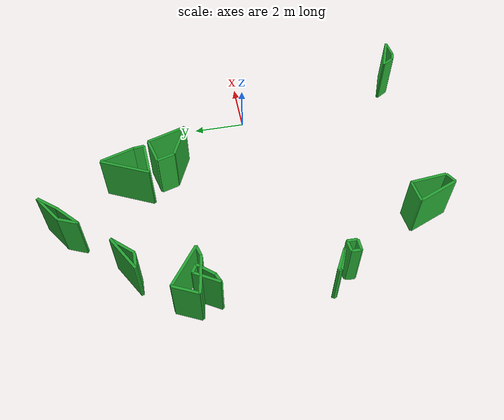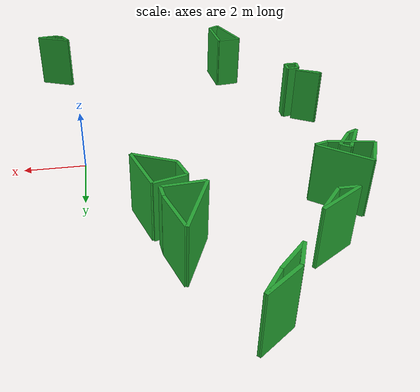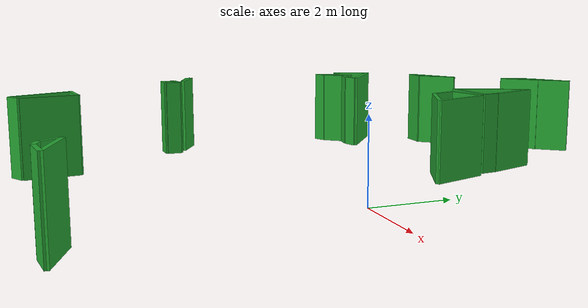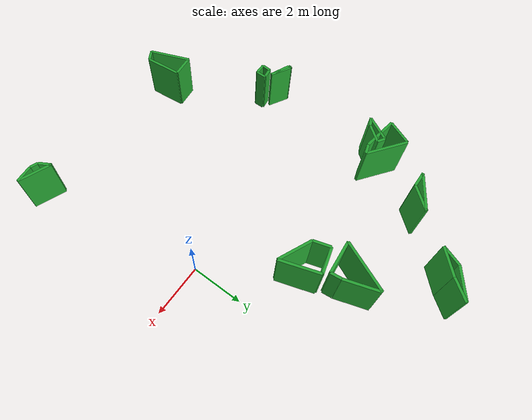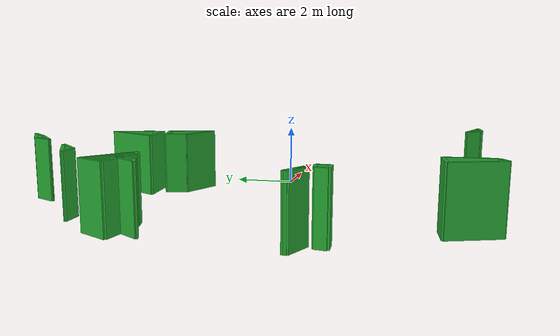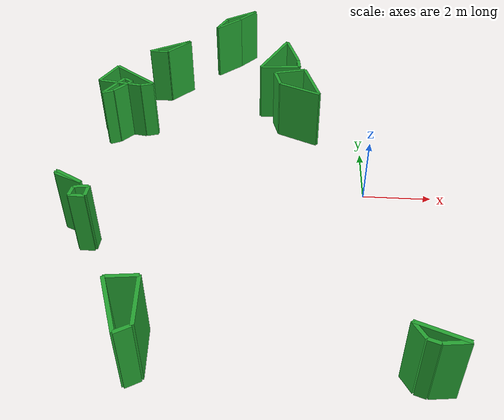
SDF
<?xml version='1.0'?>
<sdf version='1.6'>
  <model name='walls'>
    <pose frame=''>0 0 0 0 -0 0</pose>
    <static>1</static>
    <link name='obstcle_1'>
      <collision name='edge_1_Collision'>
        <geometry>
          <box>
            <size>0.60 0.1 2</size>
          </box>
        </geometry>
        <pose frame=''>-6.91 4.86 1 0 -0 0.00</pose>
      </collision>
      <visual name='edge_1_Visual'>
        <pose frame=''>-6.91 4.86 1 0 -0 0.00</pose>
        <geometry>
          <box>
            <size>0.60 0.1 2</size>
          </box>
        </geometry>
        <material>
          <script>
            <uri>file://media/materials/scripts/gazebo.material</uri>
            <name>Gazebo/Green</name>
          </script>
          <ambient>1 1 1 1</ambient>
        </material>
        <meta>
          <layer>0</layer>
        </meta>
      </visual>
      <collision name='edge_2_Collision'>
        <geometry>
          <box>
            <size>1.02 0.1 2</size>
          </box>
        </geometry>
        <pose frame=''>-6.27 5.24 1 0 -0 0.84</pose>
      </collision>
      <visual name='edge_2_Visual'>
        <pose frame=''>-6.27 5.24 1 0 -0 0.84</pose>
        <geometry>
          <box>
            <size>1.02 0.1 2</size>
          </box>
        </geometry>
        <material>
          <script>
            <uri>file://media/materials/scripts/gazebo.material</uri>
            <name>Gazebo/Green</name>
          </script>
          <ambient>1 1 1 1</ambient>
        </material>
        <meta>
          <layer>0</layer>
        </meta>
      </visual>
      <collision name='edge_3_Collision'>
        <geometry>
          <box>
            <size>1.49 0.1 2</size>
          </box>
        </geometry>
        <pose frame=''>-6.57 5.24 1 0 -0 0.54</pose>
      </collision>
      <visual name='edge_3_Visual'>
        <pose frame=''>-6.57 5.24 1 0 -0 0.54</pose>
        <geometry>
          <box>
            <size>1.49 0.1 2</size>
          </box>
        </geometry>
        <material>
          <script>
            <uri>file://media/materials/scripts/gazebo.material</uri>
            <name>Gazebo/Green</name>
          </script>
          <ambient>1 1 1 1</ambient>
        </material>
        <meta>
          <layer>0</layer>
        </meta>
      </visual>
    </link>
    <link name='obstcle_2'>
      <collision name='edge_4_Collision'>
        <geometry>
          <box>
            <size>0.42 0.1 2</size>
          </box>
        </geometry>
        <pose frame=''>-5.60 -6.72 1 0 -0 0.52</pose>
      </collision>
      <visual name='edge_4_Visual'>
        <pose frame=''>-5.60 -6.72 1 0 -0 0.52</pose>
        <geometry>
          <box>
            <size>0.42 0.1 2</size>
          </box>
        </geometry>
        <material>
          <script>
            <uri>file://media/materials/scripts/gazebo.material</uri>
            <name>Gazebo/Green</name>
          </script>
          <ambient>1 1 1 1</ambient>
        </material>
        <meta>
          <layer>0</layer>
        </meta>
      </visual>
      <collision name='edge_5_Collision'>
        <geometry>
          <box>
            <size>1.39 0.1 2</size>
          </box>
        </geometry>
        <pose frame=''>-5.47 -5.92 1 0 -0 -1.48</pose>
      </collision>
      <visual name='edge_5_Visual'>
        <pose frame=''>-5.47 -5.92 1 0 -0 -1.48</pose>
        <geometry>
          <box>
            <size>1.39 0.1 2</size>
          </box>
        </geometry>
        <material>
          <script>
            <uri>file://media/materials/scripts/gazebo.material</uri>
            <name>Gazebo/Green</name>
          </script>
          <ambient>1 1 1 1</ambient>
        </material>
        <meta>
          <layer>0</layer>
        </meta>
      </visual>
      <collision name='edge_6_Collision'>
        <geometry>
          <box>
            <size>0.84 0.1 2</size>
          </box>
        </geometry>
        <pose frame=''>-5.95 -5.28 1 0 -0 0.11</pose>
      </collision>
      <visual name='edge_6_Visual'>
        <pose frame=''>-5.95 -5.28 1 0 -0 0.11</pose>
        <geometry>
          <box>
            <size>0.84 0.1 2</size>
          </box>
        </geometry>
        <material>
          <script>
            <uri>file://media/materials/scripts/gazebo.material</uri>
            <name>Gazebo/Green</name>
          </script>
          <ambient>1 1 1 1</ambient>
        </material>
        <meta>
          <layer>0</layer>
        </meta>
      </visual>
      <collision name='edge_7_Collision'>
        <geometry>
          <box>
            <size>1.61 0.1 2</size>
          </box>
        </geometry>
        <pose frame=''>-6.07 -6.07 1 0 -0 -1.20</pose>
      </collision>
      <visual name='edge_7_Visual'>
        <pose frame=''>-6.07 -6.07 1 0 -0 -1.20</pose>
        <geometry>
          <box>
            <size>1.61 0.1 2</size>
          </box>
        </geometry>
        <material>
          <script>
            <uri>file://media/materials/scripts/gazebo.material</uri>
            <name>Gazebo/Green</name>
          </script>
          <ambient>1 1 1 1</ambient>
        </material>
        <meta>
          <layer>0</layer>
        </meta>
      </visual>
    </link>
    <link name='obstcle_3'>
      <collision name='edge_8_Collision'>
        <geometry>
          <box>
            <size>0.40 0.1 2</size>
          </box>
        </geometry>
        <pose frame=''>-6.93 2.73 1 0 -0 0.28</pose>
      </collision>
      <visual name='edge_8_Visual'>
        <pose frame=''>-6.93 2.73 1 0 -0 0.28</pose>
        <geometry>
          <box>
            <size>0.40 0.1 2</size>
          </box>
        </geometry>
        <material>
          <script>
            <uri>file://media/materials/scripts/gazebo.material</uri>
            <name>Gazebo/Green</name>
          </script>
          <ambient>1 1 1 1</ambient>
        </material>
        <meta>
          <layer>0</layer>
        </meta>
      </visual>
      <collision name='edge_9_Collision'>
        <geometry>
          <box>
            <size>1.68 0.1 2</size>
          </box>
        </geometry>
        <pose frame=''>-7.41 3.29 1 0 -0 -0.64</pose>
      </collision>
      <visual name='edge_9_Visual'>
        <pose frame=''>-7.41 3.29 1 0 -0 -0.64</pose>
        <geometry>
          <box>
            <size>1.68 0.1 2</size>
          </box>
        </geometry>
        <material>
          <script>
            <uri>file://media/materials/scripts/gazebo.material</uri>
            <name>Gazebo/Green</name>
          </script>
          <ambient>1 1 1 1</ambient>
        </material>
        <meta>
          <layer>0</layer>
        </meta>
      </visual>
      <collision name='edge_10_Collision'>
        <geometry>
          <box>
            <size>0.99 0.1 2</size>
          </box>
        </geometry>
        <pose frame=''>-8.29 3.34 1 0 -0 1.13</pose>
      </collision>
      <visual name='edge_10_Visual'>
        <pose frame=''>-8.29 3.34 1 0 -0 1.13</pose>
        <geometry>
          <box>
            <size>0.99 0.1 2</size>
          </box>
        </geometry>
        <material>
          <script>
            <uri>file://media/materials/scripts/gazebo.material</uri>
            <name>Gazebo/Green</name>
          </script>
          <ambient>1 1 1 1</ambient>
        </material>
        <meta>
          <layer>0</layer>
        </meta>
      </visual>
      <collision name='edge_11_Collision'>
        <geometry>
          <box>
            <size>1.40 0.1 2</size>
          </box>
        </geometry>
        <pose frame=''>-7.81 2.78 1 0 -0 -0.16</pose>
      </collision>
      <visual name='edge_11_Visual'>
        <pose frame=''>-7.81 2.78 1 0 -0 -0.16</pose>
        <geometry>
          <box>
            <size>1.40 0.1 2</size>
          </box>
        </geometry>
        <material>
          <script>
            <uri>file://media/materials/scripts/gazebo.material</uri>
            <name>Gazebo/Green</name>
          </script>
          <ambient>1 1 1 1</ambient>
        </material>
        <meta>
          <layer>0</layer>
        </meta>
      </visual>
    </link>
    <link name='obstcle_4'>
      <collision name='edge_12_Collision'>
        <geometry>
          <box>
            <size>1.27 0.1 2</size>
          </box>
        </geometry>
        <pose frame=''>-2.70 4.09 1 0 -0 0.07</pose>
      </collision>
      <visual name='edge_12_Visual'>
        <pose frame=''>-2.70 4.09 1 0 -0 0.07</pose>
        <geometry>
          <box>
            <size>1.27 0.1 2</size>
          </box>
        </geometry>
        <material>
          <script>
            <uri>file://media/materials/scripts/gazebo.material</uri>
            <name>Gazebo/Green</name>
          </script>
          <ambient>1 1 1 1</ambient>
        </material>
        <meta>
          <layer>0</layer>
        </meta>
      </visual>
      <collision name='edge_13_Collision'>
        <geometry>
          <box>
            <size>0.40 0.1 2</size>
          </box>
        </geometry>
        <pose frame=''>-2.08 4.33 1 0 -0 -1.47</pose>
      </collision>
      <visual name='edge_13_Visual'>
        <pose frame=''>-2.08 4.33 1 0 -0 -1.47</pose>
        <geometry>
          <box>
            <size>0.40 0.1 2</size>
          </box>
        </geometry>
        <material>
          <script>
            <uri>file://media/materials/scripts/gazebo.material</uri>
            <name>Gazebo/Green</name>
          </script>
          <ambient>1 1 1 1</ambient>
        </material>
        <meta>
          <layer>0</layer>
        </meta>
      </visual>
      <collision name='edge_14_Collision'>
        <geometry>
          <box>
            <size>1.31 0.1 2</size>
          </box>
        </geometry>
        <pose frame=''>-2.30 5.16 1 0 -0 -1.26</pose>
      </collision>
      <visual name='edge_14_Visual'>
        <pose frame=''>-2.30 5.16 1 0 -0 -1.26</pose>
        <geometry>
          <box>
            <size>1.31 0.1 2</size>
          </box>
        </geometry>
        <material>
          <script>
            <uri>file://media/materials/scripts/gazebo.material</uri>
            <name>Gazebo/Green</name>
          </script>
          <ambient>1 1 1 1</ambient>
        </material>
        <meta>
          <layer>0</layer>
        </meta>
      </visual>
      <collision name='edge_15_Collision'>
        <geometry>
          <box>
            <size>1.93 0.1 2</size>
          </box>
        </geometry>
        <pose frame=''>-2.92 4.92 1 0 -0 1.13</pose>
      </collision>
      <visual name='edge_15_Visual'>
        <pose frame=''>-2.92 4.92 1 0 -0 1.13</pose>
        <geometry>
          <box>
            <size>1.93 0.1 2</size>
          </box>
        </geometry>
        <material>
          <script>
            <uri>file://media/materials/scripts/gazebo.material</uri>
            <name>Gazebo/Green</name>
          </script>
          <ambient>1 1 1 1</ambient>
        </material>
        <meta>
          <layer>0</layer>
        </meta>
      </visual>
    </link>
    <link name='obstcle_5'>
      <collision name='edge_16_Collision'>
        <geometry>
          <box>
            <size>0.43 0.1 2</size>
          </box>
        </geometry>
        <pose frame=''>-7.71 -2.66 1 0 -0 0.03</pose>
      </collision>
      <visual name='edge_16_Visual'>
        <pose frame=''>-7.71 -2.66 1 0 -0 0.03</pose>
        <geometry>
          <box>
            <size>0.43 0.1 2</size>
          </box>
        </geometry>
        <material>
          <script>
            <uri>file://media/materials/scripts/gazebo.material</uri>
            <name>Gazebo/Green</name>
          </script>
          <ambient>1 1 1 1</ambient>
        </material>
        <meta>
          <layer>0</layer>
        </meta>
      </visual>
      <collision name='edge_17_Collision'>
        <geometry>
          <box>
            <size>0.38 0.1 2</size>
          </box>
        </geometry>
        <pose frame=''>-7.49 -2.46 1 0 -0 1.55</pose>
      </collision>
      <visual name='edge_17_Visual'>
        <pose frame=''>-7.49 -2.46 1 0 -0 1.55</pose>
        <geometry>
          <box>
            <size>0.38 0.1 2</size>
          </box>
        </geometry>
        <material>
          <script>
            <uri>file://media/materials/scripts/gazebo.material</uri>
            <name>Gazebo/Green</name>
          </script>
          <ambient>1 1 1 1</ambient>
        </material>
        <meta>
          <layer>0</layer>
        </meta>
      </visual>
      <collision name='edge_18_Collision'>
        <geometry>
          <box>
            <size>0.40 0.1 2</size>
          </box>
        </geometry>
        <pose frame=''>-7.69 -2.30 1 0 -0 0.13</pose>
      </collision>
      <visual name='edge_18_Visual'>
        <pose frame=''>-7.69 -2.30 1 0 -0 0.13</pose>
        <geometry>
          <box>
            <size>0.40 0.1 2</size>
          </box>
        </geometry>
        <material>
          <script>
            <uri>file://media/materials/scripts/gazebo.material</uri>
            <name>Gazebo/Green</name>
          </script>
          <ambient>1 1 1 1</ambient>
        </material>
        <meta>
          <layer>0</layer>
        </meta>
      </visual>
      <collision name='edge_19_Collision'>
        <geometry>
          <box>
            <size>0.34 0.1 2</size>
          </box>
        </geometry>
        <pose frame=''>-7.90 -2.49 1 0 -0 1.47</pose>
      </collision>
      <visual name='edge_19_Visual'>
        <pose frame=''>-7.90 -2.49 1 0 -0 1.47</pose>
        <geometry>
          <box>
            <size>0.34 0.1 2</size>
          </box>
        </geometry>
        <material>
          <script>
            <uri>file://media/materials/scripts/gazebo.material</uri>
            <name>Gazebo/Green</name>
          </script>
          <ambient>1 1 1 1</ambient>
        </material>
        <meta>
          <layer>0</layer>
        </meta>
      </visual>
    </link>
    <link name='obstcle_6'>
      <collision name='edge_20_Collision'>
        <geometry>
          <box>
            <size>0.86 0.1 2</size>
          </box>
        </geometry>
        <pose frame=''>-8.12 -1.92 1 0 -0 -0.51</pose>
      </collision>
      <visual name='edge_20_Visual'>
        <pose frame=''>-8.12 -1.92 1 0 -0 -0.51</pose>
        <geometry>
          <box>
            <size>0.86 0.1 2</size>
          </box>
        </geometry>
        <material>
          <script>
            <uri>file://media/materials/scripts/gazebo.material</uri>
            <name>Gazebo/Green</name>
          </script>
          <ambient>1 1 1 1</ambient>
        </material>
        <meta>
          <layer>0</layer>
        </meta>
      </visual>
      <collision name='edge_21_Collision'>
        <geometry>
          <box>
            <size>0.04 0.1 2</size>
          </box>
        </geometry>
        <pose frame=''>-8.51 -1.71 1 0 -0 0.22</pose>
      </collision>
      <visual name='edge_21_Visual'>
        <pose frame=''>-8.51 -1.71 1 0 -0 0.22</pose>
        <geometry>
          <box>
            <size>0.04 0.1 2</size>
          </box>
        </geometry>
        <material>
          <script>
            <uri>file://media/materials/scripts/gazebo.material</uri>
            <name>Gazebo/Green</name>
          </script>
          <ambient>1 1 1 1</ambient>
        </material>
        <meta>
          <layer>0</layer>
        </meta>
      </visual>
      <collision name='edge_22_Collision'>
        <geometry>
          <box>
            <size>0.09 0.1 2</size>
          </box>
        </geometry>
        <pose frame=''>-8.52 -1.76 1 0 -0 -1.38</pose>
      </collision>
      <visual name='edge_22_Visual'>
        <pose frame=''>-8.52 -1.76 1 0 -0 -1.38</pose>
        <geometry>
          <box>
            <size>0.09 0.1 2</size>
          </box>
        </geometry>
        <material>
          <script>
            <uri>file://media/materials/scripts/gazebo.material</uri>
            <name>Gazebo/Green</name>
          </script>
          <ambient>1 1 1 1</ambient>
        </material>
        <meta>
          <layer>0</layer>
        </meta>
      </visual>
      <collision name='edge_23_Collision'>
        <geometry>
          <box>
            <size>0.83 0.1 2</size>
          </box>
        </geometry>
        <pose frame=''>-8.13 -1.97 1 0 -0 -0.40</pose>
      </collision>
      <visual name='edge_23_Visual'>
        <pose frame=''>-8.13 -1.97 1 0 -0 -0.40</pose>
        <geometry>
          <box>
            <size>0.83 0.1 2</size>
          </box>
        </geometry>
        <material>
          <script>
            <uri>file://media/materials/scripts/gazebo.material</uri>
            <name>Gazebo/Green</name>
          </script>
          <ambient>1 1 1 1</ambient>
        </material>
        <meta>
          <layer>0</layer>
        </meta>
      </visual>
    </link>
    <link name='obstcle_7'>
      <collision name='edge_24_Collision'>
        <geometry>
          <box>
            <size>1.52 0.1 2</size>
          </box>
        </geometry>
        <pose frame=''>-1.64 3.23 1 0 -0 -1.26</pose>
      </collision>
      <visual name='edge_24_Visual'>
        <pose frame=''>-1.64 3.23 1 0 -0 -1.26</pose>
        <geometry>
          <box>
            <size>1.52 0.1 2</size>
          </box>
        </geometry>
        <material>
          <script>
            <uri>file://media/materials/scripts/gazebo.material</uri>
            <name>Gazebo/Green</name>
          </script>
          <ambient>1 1 1 1</ambient>
        </material>
        <meta>
          <layer>0</layer>
        </meta>
      </visual>
      <collision name='edge_25_Collision'>
        <geometry>
          <box>
            <size>1.00 0.1 2</size>
          </box>
        </geometry>
        <pose frame=''>-2.36 3.83 1 0 -0 0.25</pose>
      </collision>
      <visual name='edge_25_Visual'>
        <pose frame=''>-2.36 3.83 1 0 -0 0.25</pose>
        <geometry>
          <box>
            <size>1.00 0.1 2</size>
          </box>
        </geometry>
        <material>
          <script>
            <uri>file://media/materials/scripts/gazebo.material</uri>
            <name>Gazebo/Green</name>
          </script>
          <ambient>1 1 1 1</ambient>
        </material>
        <meta>
          <layer>0</layer>
        </meta>
      </visual>
      <collision name='edge_26_Collision'>
        <geometry>
          <box>
            <size>0.68 0.1 2</size>
          </box>
        </geometry>
        <pose frame=''>-2.75 3.38 1 0 -0 -1.28</pose>
      </collision>
      <visual name='edge_26_Visual'>
        <pose frame=''>-2.75 3.38 1 0 -0 -1.28</pose>
        <geometry>
          <box>
            <size>0.68 0.1 2</size>
          </box>
        </geometry>
        <material>
          <script>
            <uri>file://media/materials/scripts/gazebo.material</uri>
            <name>Gazebo/Green</name>
          </script>
          <ambient>1 1 1 1</ambient>
        </material>
        <meta>
          <layer>0</layer>
        </meta>
      </visual>
      <collision name='edge_27_Collision'>
        <geometry>
          <box>
            <size>1.36 0.1 2</size>
          </box>
        </geometry>
        <pose frame=''>-2.03 2.78 1 0 -0 -0.42</pose>
      </collision>
      <visual name='edge_27_Visual'>
        <pose frame=''>-2.03 2.78 1 0 -0 -0.42</pose>
        <geometry>
          <box>
            <size>1.36 0.1 2</size>
          </box>
        </geometry>
        <material>
          <script>
            <uri>file://media/materials/scripts/gazebo.material</uri>
            <name>Gazebo/Green</name>
          </script>
          <ambient>1 1 1 1</ambient>
        </material>
        <meta>
          <layer>0</layer>
        </meta>
      </visual>
    </link>
    <link name='obstcle_8'>
      <collision name='edge_28_Collision'>
        <geometry>
          <box>
            <size>1.07 0.1 2</size>
          </box>
        </geometry>
        <pose frame=''>-4.70 7.05 1 0 -0 0.76</pose>
      </collision>
      <visual name='edge_28_Visual'>
        <pose frame=''>-4.70 7.05 1 0 -0 0.76</pose>
        <geometry>
          <box>
            <size>1.07 0.1 2</size>
          </box>
        </geometry>
        <material>
          <script>
            <uri>file://media/materials/scripts/gazebo.material</uri>
            <name>Gazebo/Green</name>
          </script>
          <ambient>1 1 1 1</ambient>
        </material>
        <meta>
          <layer>0</layer>
        </meta>
      </visual>
      <collision name='edge_29_Collision'>
        <geometry>
          <box>
            <size>0.85 0.1 2</size>
          </box>
        </geometry>
        <pose frame=''>-4.05 7.75 1 0 -0 0.89</pose>
      </collision>
      <visual name='edge_29_Visual'>
        <pose frame=''>-4.05 7.75 1 0 -0 0.89</pose>
        <geometry>
          <box>
            <size>0.85 0.1 2</size>
          </box>
        </geometry>
        <material>
          <script>
            <uri>file://media/materials/scripts/gazebo.material</uri>
            <name>Gazebo/Green</name>
          </script>
          <ambient>1 1 1 1</ambient>
        </material>
        <meta>
          <layer>0</layer>
        </meta>
      </visual>
      <collision name='edge_30_Collision'>
        <geometry>
          <box>
            <size>1.23 0.1 2</size>
          </box>
        </geometry>
        <pose frame=''>-4.29 7.73 1 0 -0 0.61</pose>
      </collision>
      <visual name='edge_30_Visual'>
        <pose frame=''>-4.29 7.73 1 0 -0 0.61</pose>
        <geometry>
          <box>
            <size>1.23 0.1 2</size>
          </box>
        </geometry>
        <material>
          <script>
            <uri>file://media/materials/scripts/gazebo.material</uri>
            <name>Gazebo/Green</name>
          </script>
          <ambient>1 1 1 1</ambient>
        </material>
        <meta>
          <layer>0</layer>
        </meta>
      </visual>
      <collision name='edge_31_Collision'>
        <geometry>
          <box>
            <size>0.76 0.1 2</size>
          </box>
        </geometry>
        <pose frame=''>-4.94 7.03 1 0 -0 1.17</pose>
      </collision>
      <visual name='edge_31_Visual'>
        <pose frame=''>-4.94 7.03 1 0 -0 1.17</pose>
        <geometry>
          <box>
            <size>0.76 0.1 2</size>
          </box>
        </geometry>
        <material>
          <script>
            <uri>file://media/materials/scripts/gazebo.material</uri>
            <name>Gazebo/Green</name>
          </script>
          <ambient>1 1 1 1</ambient>
        </material>
        <meta>
          <layer>0</layer>
        </meta>
      </visual>
    </link>
    <link name='obstcle_9'>
      <collision name='edge_32_Collision'>
        <geometry>
          <box>
            <size>0.65 0.1 2</size>
          </box>
        </geometry>
        <pose frame=''>1.37 -6.62 1 0 -0 0.11</pose>
      </collision>
      <visual name='edge_32_Visual'>
        <pose frame=''>1.37 -6.62 1 0 -0 0.11</pose>
        <geometry>
          <box>
            <size>0.65 0.1 2</size>
          </box>
        </geometry>
        <material>
          <script>
            <uri>file://media/materials/scripts/gazebo.material</uri>
            <name>Gazebo/Green</name>
          </script>
          <ambient>1 1 1 1</ambient>
        </material>
        <meta>
          <layer>0</layer>
        </meta>
      </visual>
      <collision name='edge_33_Collision'>
        <geometry>
          <box>
            <size>1.27 0.1 2</size>
          </box>
        </geometry>
        <pose frame=''>1.10 -6.36 1 0 -0 -0.37</pose>
      </collision>
      <visual name='edge_33_Visual'>
        <pose frame=''>1.10 -6.36 1 0 -0 -0.37</pose>
        <geometry>
          <box>
            <size>1.27 0.1 2</size>
          </box>
        </geometry>
        <material>
          <script>
            <uri>file://media/materials/scripts/gazebo.material</uri>
            <name>Gazebo/Green</name>
          </script>
          <ambient>1 1 1 1</ambient>
        </material>
        <meta>
          <layer>0</layer>
        </meta>
      </visual>
      <collision name='edge_34_Collision'>
        <geometry>
          <box>
            <size>0.50 0.1 2</size>
          </box>
        </geometry>
        <pose frame=''>0.63 -6.34 1 0 -0 -1.04</pose>
      </collision>
      <visual name='edge_34_Visual'>
        <pose frame=''>0.63 -6.34 1 0 -0 -1.04</pose>
        <geometry>
          <box>
            <size>0.50 0.1 2</size>
          </box>
        </geometry>
        <material>
          <script>
            <uri>file://media/materials/scripts/gazebo.material</uri>
            <name>Gazebo/Green</name>
          </script>
          <ambient>1 1 1 1</ambient>
        </material>
        <meta>
          <layer>0</layer>
        </meta>
      </visual>
      <collision name='edge_35_Collision'>
        <geometry>
          <box>
            <size>0.30 0.1 2</size>
          </box>
        </geometry>
        <pose frame=''>0.90 -6.61 1 0 -0 -0.33</pose>
      </collision>
      <visual name='edge_35_Visual'>
        <pose frame=''>0.90 -6.61 1 0 -0 -0.33</pose>
        <geometry>
          <box>
            <size>0.30 0.1 2</size>
          </box>
        </geometry>
        <material>
          <script>
            <uri>file://media/materials/scripts/gazebo.material</uri>
            <name>Gazebo/Green</name>
          </script>
          <ambient>1 1 1 1</ambient>
        </material>
        <meta>
          <layer>0</layer>
        </meta>
      </visual>
    </link>
    <link name='obstcle_10'>
      <collision name='edge_36_Collision'>
        <geometry>
          <box>
            <size>0.35 0.1 2</size>
          </box>
        </geometry>
        <pose frame=''>-8.08 2.23 1 0 -0 0.42</pose>
      </collision>
      <visual name='edge_36_Visual'>
        <pose frame=''>-8.08 2.23 1 0 -0 0.42</pose>
        <geometry>
          <box>
            <size>0.35 0.1 2</size>
          </box>
        </geometry>
        <material>
          <script>
            <uri>file://media/materials/scripts/gazebo.material</uri>
            <name>Gazebo/Green</name>
          </script>
          <ambient>1 1 1 1</ambient>
        </material>
        <meta>
          <layer>0</layer>
        </meta>
      </visual>
      <collision name='edge_37_Collision'>
        <geometry>
          <box>
            <size>0.75 0.1 2</size>
          </box>
        </geometry>
        <pose frame=''>-7.68 2.59 1 0 -0 0.88</pose>
      </collision>
      <visual name='edge_37_Visual'>
        <pose frame=''>-7.68 2.59 1 0 -0 0.88</pose>
        <geometry>
          <box>
            <size>0.75 0.1 2</size>
          </box>
        </geometry>
        <material>
          <script>
            <uri>file://media/materials/scripts/gazebo.material</uri>
            <name>Gazebo/Green</name>
          </script>
          <ambient>1 1 1 1</ambient>
        </material>
        <meta>
          <layer>0</layer>
        </meta>
      </visual>
      <collision name='edge_38_Collision'>
        <geometry>
          <box>
            <size>0.32 0.1 2</size>
          </box>
        </geometry>
        <pose frame=''>-7.58 2.96 1 0 -0 -0.55</pose>
      </collision>
      <visual name='edge_38_Visual'>
        <pose frame=''>-7.58 2.96 1 0 -0 -0.55</pose>
        <geometry>
          <box>
            <size>0.32 0.1 2</size>
          </box>
        </geometry>
        <material>
          <script>
            <uri>file://media/materials/scripts/gazebo.material</uri>
            <name>Gazebo/Green</name>
          </script>
          <ambient>1 1 1 1</ambient>
        </material>
        <meta>
          <layer>0</layer>
        </meta>
      </visual>
      <collision name='edge_39_Collision'>
        <geometry>
          <box>
            <size>1.03 0.1 2</size>
          </box>
        </geometry>
        <pose frame=''>-7.97 2.60 1 0 -0 1.04</pose>
      </collision>
      <visual name='edge_39_Visual'>
        <pose frame=''>-7.97 2.60 1 0 -0 1.04</pose>
        <geometry>
          <box>
            <size>1.03 0.1 2</size>
          </box>
        </geometry>
        <material>
          <script>
            <uri>file://media/materials/scripts/gazebo.material</uri>
            <name>Gazebo/Green</name>
          </script>
          <ambient>1 1 1 1</ambient>
        </material>
        <meta>
          <layer>0</layer>
        </meta>
      </visual>
    </link>
  </model>
</sdf>
